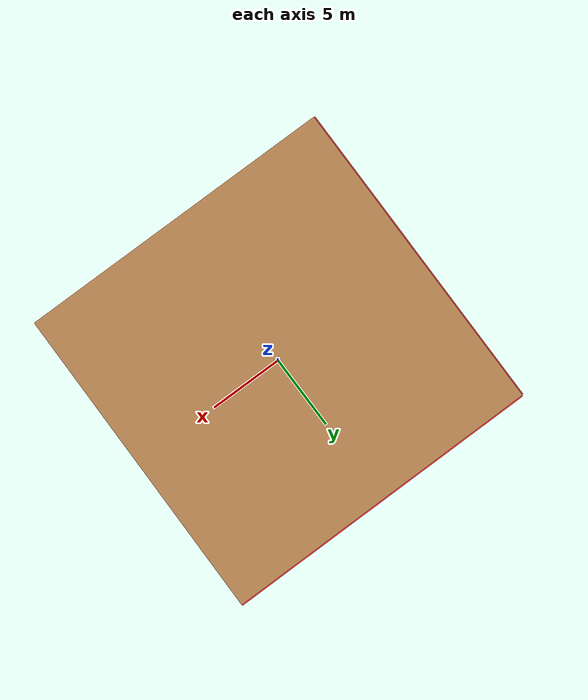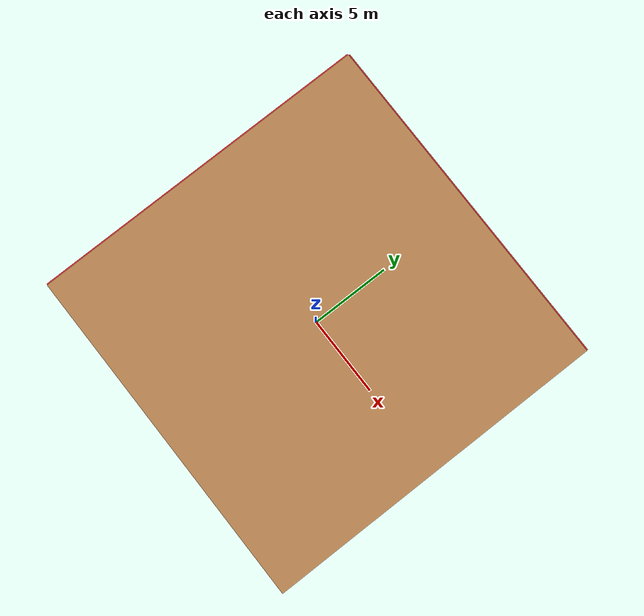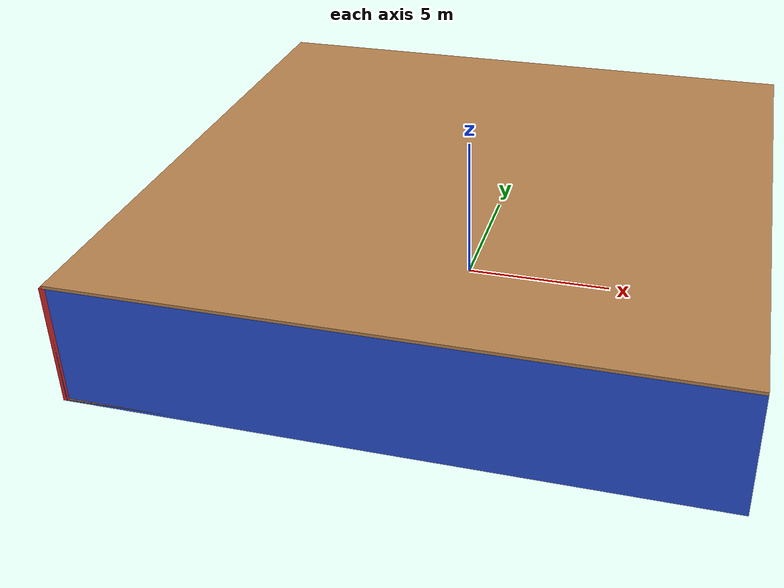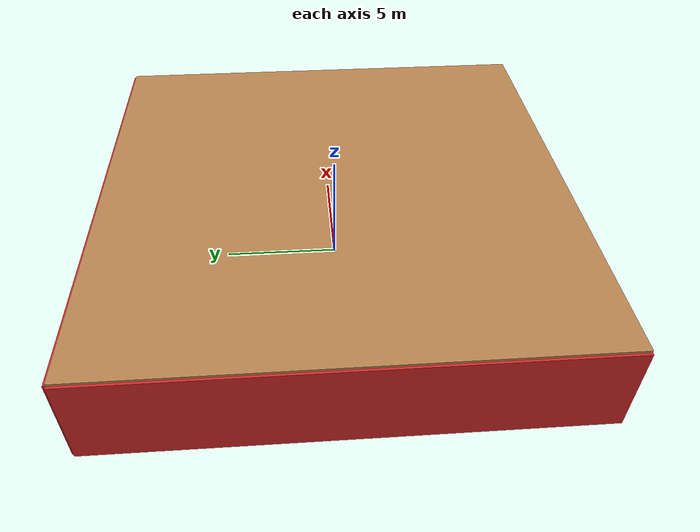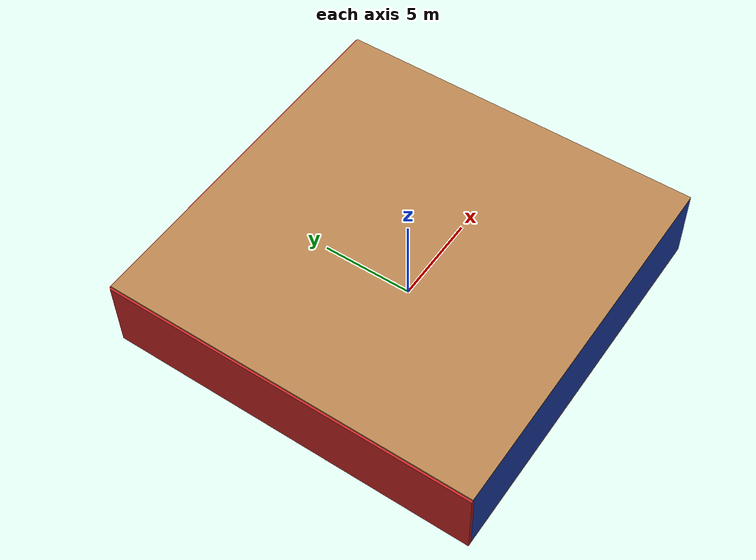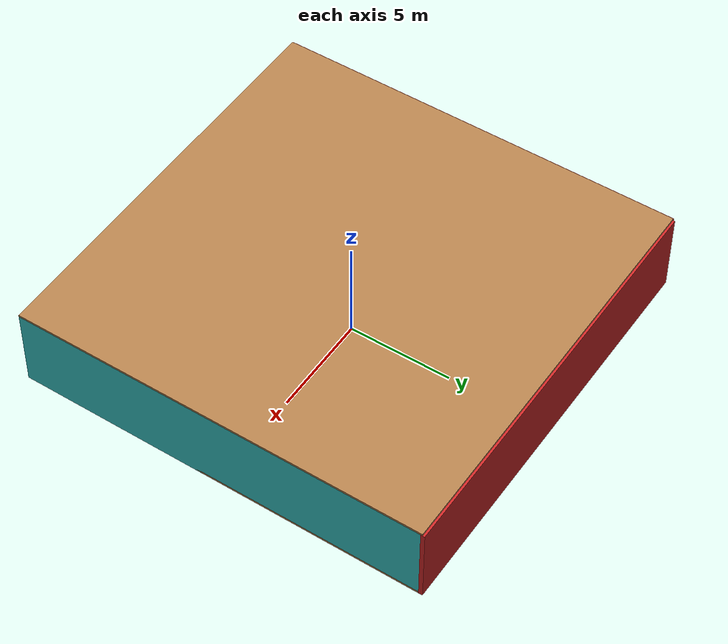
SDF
<sdf version="1.4">
 <world name="default">
  <physics type="ode">
   <max_step_size>0.001</max_step_size>
   <real_time_factor>1</real_time_factor>
   <real_time_update_rate>1000</real_time_update_rate>
   <gravity>0 0 -9.8</gravity>
  </physics>
  <scene><ambient>0.4 0.4 0.4 1</ambient><background>0.7 0.7 0.7 1</background><shadows>1</shadows></scene>
  <model name="Surrounding">
   <static>1</static>
   <link name="Ceiling">
    <collision name="Ceiling_Collision"><geometry><box><size>20 20 0.1</size></box></geometry></collision>
    <visual name="Ceiling_Visual">
     <geometry><box><size>20 20 0.1</size></box></geometry>
     <material>
      <script><uri>file://media/materials/scripts/gazebo.material</uri><name>Gazebo/WoodFloor</name></script>
     </material>
    </visual>
    <pose>0 0 4.05 0 0 0</pose>
   </link>
   <link name="Wall_South">
    <collision name="Wall_South_Collision">
     <geometry><box><size>20 0 4</size></box></geometry>
     <pose>0 0 2 0 -0 0</pose>
    </collision>
    <visual name="Wall_South_Visual">
     <pose>0 0 2 0 -0 0</pose>
     <geometry><box><size>20 0 4</size></box></geometry>
     <material>
      <script><uri>file://media/materials/scripts/gazebo.material</uri><name>Gazebo/Blue</name></script>
     </material>
    </visual>
    <velocity_decay><linear>0</linear><angular>0</angular></velocity_decay>
    <pose>0 -10 0 0 -0 0</pose>
   </link>
   <link name="Wall_East">
    <collision name="Wall_21_Collision">
     <geometry><box><size>20 0 4</size></box></geometry>
     <pose>0 0 2 0 -0 0</pose>
    </collision>
    <visual name="Wall_21_Visual">
     <pose>0 0 2 0 -0 0</pose>
     <geometry><box><size>20 0 4</size></box></geometry>
     <material>
      <script>
       <uri>file://media/materials/scripts/gazebo.material</uri>
       <name>Gazebo/TurquoiseGlowOutline</name>
      </script>
     </material>
    </visual>
    <velocity_decay><linear>0</linear><angular>0</angular></velocity_decay>
    <pose>10 0 0 0 -0 1.5708</pose>
   </link>
   <link name="Wall_North">
    <collision name="Wall_22_Collision">
     <geometry><box><size>20 0.2 4</size></box></geometry>
     <pose>0 0 2 0 -0 0</pose>
    </collision>
    <visual name="Wall_22_Visual">
     <pose>0 0 2 0 -0 0</pose>
     <geometry><box><size>20 0.2 4</size></box></geometry>
     <material>
      <script><uri>file://media/materials/scripts/gazebo.material</uri><name>Gazebo/Red</name></script>
     </material>
    </visual>
    <velocity_decay><linear>0</linear><angular>0</angular></velocity_decay>
    <pose>0 10 0 0 -0 0</pose>
   </link>
   <link name="Wall_West">
    <collision name="Wall_23_Collision">
     <geometry><box><size>20 0.2 4</size></box></geometry>
     <pose>0 0 2 0 -0 0</pose>
    </collision>
    <visual name="Wall_23_Visual">
     <pose>0 0 2 0 -0 0</pose>
     <geometry><box><size>20 0.2 4</size></box></geometry>
     <material>
      <script><uri>file://media/materials/scripts/gazebo.material</uri><name>Gazebo/RedGlow</name></script>
     </material>
    </visual>
    <velocity_decay><linear>0</linear><angular>0</angular></velocity_decay>
    <pose>-10 0 0 0 0 -1.5708</pose>
   </link>
   <link name="Ground_link">
    <collision name="collision">
     <pose>0 0 .05 0 -0 0</pose>
     <geometry><box><size>20 20 0.1</size></box></geometry>
    </collision>
    <visual name="visual">
     <pose>0 0 .05 0 -0 0</pose>
     <geometry><box><size>20 20 0.1</size></box></geometry>
     <material>
      <script><uri>file://media/materials/scripts/gazebo.material</uri><name>Gazebo/WoodFloor</name></script>
     </material>
    </visual>
   </link>
   <static>1</static>
  </model>
  <spherical_coordinates>
   <surface_model>EARTH_WGS84</surface_model>
   <latitude_deg>0</latitude_deg>
   <longitude_deg>0</longitude_deg>
   <elevation>0</elevation>
   <heading_deg>0</heading_deg>
  </spherical_coordinates>
  <light name="lightball_0" type="diffuse">
   <diffuse>0.8 0.8 0.8 1</diffuse>
   <specular>0.2 0.2 0.2 1</specular>
   <attenuation>
    <range>100</range>
    <constant>0.7</constant>
    <linear>0.01</linear>
    <quadratic>0.001</quadratic>
   </attenuation>
   <direction>-0.5 0.1 -0.9</direction>
   <pose>2.75522013044 -2.26425821321 3.70987621481 0 0 0</pose>
  </light>
  <light name="lightball_1" type="diffuse">
   <diffuse>0.8 0.8 0.8 1</diffuse>
   <specular>0.2 0.2 0.2 1</specular>
   <attenuation>
    <range>100</range>
    <constant>0.7</constant>
    <linear>0.01</linear>
    <quadratic>0.001</quadratic>
   </attenuation>
   <direction>-0.5 0.1 -0.9</direction>
   <pose>5.5257435951 3.94571366366 0.73870467704 0 0 0</pose>
  </light>
  <light name="lightball_2" type="diffuse">
   <diffuse>0.8 0.8 0.8 1</diffuse>
   <specular>0.2 0.2 0.2 1</specular>
   <attenuation>
    <range>100</range>
    <constant>0.7</constant>
    <linear>0.01</linear>
    <quadratic>0.001</quadratic>
   </attenuation>
   <direction>-0.5 0.1 -0.9</direction>
   <pose>-0.967852246981 4.1736603791 0.744664332885 0 0 0</pose>
  </light>
  <light name="lightball_3" type="diffuse">
   <diffuse>0.8 0.8 0.8 1</diffuse>
   <specular>0.2 0.2 0.2 1</specular>
   <attenuation>
    <range>100</range>
    <constant>0.7</constant>
    <linear>0.01</linear>
    <quadratic>0.001</quadratic>
   </attenuation>
   <direction>-0.5 0.1 -0.9</direction>
   <pose>6.95364878996 8.68134478798 1.87126532767 0 0 0</pose>
  </light>
  <light name="lightball_4" type="diffuse">
   <diffuse>0.8 0.8 0.8 1</diffuse>
   <specular>0.2 0.2 0.2 1</specular>
   <attenuation>
    <range>100</range>
    <constant>0.7</constant>
    <linear>0.01</linear>
    <quadratic>0.001</quadratic>
   </attenuation>
   <direction>-0.5 0.1 -0.9</direction>
   <pose>-0.399514441018 -6.85868927054 3.72995669804 0 0 0</pose>
  </light>
  <include><uri>model://table</uri><pose>-4.9158665048 1.2433026019 0 0 0 0.603539720884</pose></include>
  <include>
   <uri>model://construction_cone</uri>
   <pose>-1.34684905026 -4.08727098834 0 0 0 1.28114170326</pose>
  </include>
  <include><uri>model://cabinet</uri><pose>6.96348885515 -1.59488429833 0 0 0 0.807825895478</pose></include>
 </world>
</sdf>

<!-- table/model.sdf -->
<sdf version="1.5">
  <model name="table">
    <static>true</static>
    <link name="link">
      <collision name="surface">
        <pose>0 0 1.0 0 0 0</pose>
        <geometry>
          <box>
            <size>1.5 0.8 0.03</size>
          </box>
        </geometry>
        <surface>
          <friction>
            <ode>
              <mu>0.6</mu>
              <mu2>0.6</mu2>
            </ode>
          </friction>
        </surface>
      </collision>
      <visual name="visual1">
        <pose>0 0 1.0 0 0 0</pose>
        <geometry>
          <box>
            <size>1.5 0.8 0.03</size>
          </box>
        </geometry>
        <material>
          <script>
            <uri>model://media/materials/scripts/gazebo.material</uri>
            <name>Gazebo/Wood</name>
          </script>
        </material>
      </visual>
      <collision name="front_left_leg">
        <pose>0.68 0.38 0.5 0 0 0</pose>
        <geometry>
          <cylinder>
            <radius>0.02</radius>
            <length>1.0</length>
          </cylinder>
        </geometry>
      </collision>
      <visual name="front_left_leg">
        <pose>0.68 0.38 0.5 0 0 0</pose>
        <geometry>
          <cylinder>
            <radius>0.02</radius>
            <length>1.0</length>
          </cylinder>
        </geometry>
        <material>
          <script>
            <uri>model://media/materials/scripts/gazebo.material</uri>
            <name>Gazebo/Grey</name>
          </script>
        </material>
      </visual>
      <collision name="front_right_leg">
        <pose>0.68 -0.38 0.5 0 0 0</pose>
        <geometry>
          <cylinder>
            <radius>0.02</radius>
            <length>1.0</length>
          </cylinder>
        </geometry>
      </collision>
      <visual name="front_right_leg">
        <pose>0.68 -0.38 0.5 0 0 0</pose>
        <geometry>
          <cylinder>
            <radius>0.02</radius>
            <length>1.0</length>
          </cylinder>
        </geometry>
        <material>
          <script>
            <uri>model://media/materials/scripts/gazebo.material</uri>
            <name>Gazebo/Grey</name>
          </script>
        </material>
      </visual>
      <collision name="back_right_leg">
        <pose>-0.68 -0.38 0.5 0 0 0</pose>
        <geometry>
          <cylinder>
            <radius>0.02</radius>
            <length>1.0</length>
          </cylinder>
        </geometry>
      </collision>
      <visual name="back_right_leg">
        <pose>-0.68 -0.38 0.5 0 0 0</pose>
        <geometry>
          <cylinder>
            <radius>0.02</radius>
            <length>1.0</length>
          </cylinder>
        </geometry>
        <material>
          <script>
            <uri>model://media/materials/scripts/gazebo.material</uri>
            <name>Gazebo/Grey</name>
          </script>
        </material>
      </visual>
      <collision name="back_left_leg">
        <pose>-0.68 0.38 0.5 0 0 0</pose>
        <geometry>
          <cylinder>
            <radius>0.02</radius>
            <length>1.0</length>
          </cylinder>
        </geometry>
      </collision>
      <visual name="back_left_leg">
        <pose>-0.68 0.38 0.5 0 0 0</pose>
        <geometry>
          <cylinder>
            <radius>0.02</radius>
            <length>1.0</length>
          </cylinder>
        </geometry>
        <material>
          <script>
            <uri>model://media/materials/scripts/gazebo.material</uri>
            <name>Gazebo/Grey</name>
          </script>
        </material>
      </visual>
    </link>
  </model>
</sdf>

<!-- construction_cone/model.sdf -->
<sdf version="1.5">
  <model name="Construction Cone">
    <link name="link">
      <collision name="collision">
        <geometry>
          <mesh>
            <scale>10 10 10</scale>
            <uri>file://isr-testbed/construction_cone/meshes/construction_cone.dae</uri>
          </mesh>
        </geometry>
      </collision>
      <visual name="visual">
        <geometry>
          <mesh>
            <scale>10 10 10</scale>
            <uri>file://isr-testbed/construction_cone/meshes/construction_cone.dae</uri>
          </mesh>
        </geometry>
      </visual>
    </link>
  </model>
</sdf>

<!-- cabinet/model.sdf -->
<sdf version="1.5">
  <model name="cabinet">
    <static>true</static>
    <link name="cabinet_bottom_plate">
      <inertial>
        <pose>0 0 -1 0 0 0</pose>
        <inertia>
          <ixx>2.050000</ixx>
          <ixy>0</ixy>
          <ixz>0</ixz>
          <iyy>2.050000</iyy>
          <iyz>0</iyz>
          <izz>2.050000</izz>
        </inertia>
        <mass>25.000000</mass>
      </inertial>
      <collision name="cabinet_bottom_plate_geom">
        <pose>0 0 0.010000 0 0 0</pose>
        <geometry>
          <box>
            <size>0.450000 0.450000 0.020000</size>
          </box>
        </geometry>
      </collision>
      <visual name="cabinet_bottom_plate_geom_visual">
        <pose>0 0 0.010000 0 0 0</pose>
        <geometry>
          <box>
            <size>0.450000 0.450000 0.020000</size>
          </box>
        </geometry>
        <material>
          <script>
            <uri>model://media/materials/scripts/gazebo.material</uri>
            <name>Gazebo/Wood</name>
          </script>
        </material>
      </visual>
      <collision name="cabinet_bottom_plate_geom_cabinet_back_plate">
        <pose>0.235000 0 0.510000 0 0 0</pose>
        <geometry>
          <box>
            <size>0.020000 0.450000 1.020000</size>
          </box>
        </geometry>
      </collision>
      <visual name="cabinet_bottom_plate_geom_cabinet_back_plate_visual">
        <pose>0.235000 0 0.510000 0 0 0</pose>
        <geometry>
          <box>
            <size>0.020000 0.450000 1.020000</size>
          </box>
        </geometry>
        <material>
          <script>
            <uri>model://media/materials/scripts/gazebo.material</uri>
            <name>Gazebo/Wood</name>
          </script>
        </material>
      </visual>
      <collision name="cabinet_bottom_plate_geom_cabinet_left_plate">
        <pose>0 0.235000 0.510000 0 0 0</pose>
        <geometry>
          <box>
            <size>0.450000 0.020000 1.020000</size>
          </box>
        </geometry>
      </collision>
      <visual name="cabinet_bottom_plate_geom_cabinet_left_plate_visual">
        <pose>0 0.235000 0.510000 0 0 0</pose>
        <geometry>
          <box>
            <size>0.450000 0.020000 1.020000</size>
          </box>
        </geometry>
        <material>
          <script>
            <uri>model://media/materials/scripts/gazebo.material</uri>
            <name>Gazebo/Wood</name>
          </script>
        </material>
      </visual>
      <collision name="cabinet_bottom_plate_geom_cabinet_middle_plate">
        <pose>0 0 0.510000 0 0 0</pose>
        <geometry>
          <box>
            <size>0.450000 0.450000 0.020000</size>
          </box>
        </geometry>
      </collision>
      <visual name="cabinet_bottom_plate_geom_cabinet_middle_plate_visual">
        <pose>0 0 0.510000 0 0 0</pose>
        <geometry>
          <box>
            <size>0.450000 0.450000 0.020000</size>
          </box>
        </geometry>
        <material>
          <script>
            <uri>model://media/materials/scripts/gazebo.material</uri>
            <name>Gazebo/Wood</name>
          </script>
        </material>
      </visual>
      <collision name="cabinet_bottom_plate_geom_cabinet_right_plate">
        <pose>0 -0.235000 0.510000 0 0 0</pose>
        <geometry>
          <box>
            <size>0.450000 0.020000 1.020000</size>
          </box>
        </geometry>
      </collision>
      <visual name="cabinet_bottom_plate_geom_cabinet_right_plate_visual">
        <pose>0 -0.235000 0.510000 0 0 0</pose>
        <geometry>
          <box>
            <size>0.450000 0.020000 1.020000</size>
          </box>
        </geometry>
        <material>
          <script>
            <uri>model://media/materials/scripts/gazebo.material</uri>
            <name>Gazebo/Wood</name>
          </script>
        </material>
      </visual>
      <collision name="cabinet_bottom_plate_geom_cabinet_top_plate">
        <pose>0 0 1.010000 0 0 0</pose>
        <geometry>
          <box>
            <size>0.450000 0.450000 0.020000</size>
          </box>
        </geometry>
      </collision>
      <visual name="cabinet_bottom_plate_geom_cabinet_top_plate_visual">
        <pose>0 0 1.010000 0 0 0</pose>
        <geometry>
          <box>
            <size>0.450000 0.450000 0.020000</size>
          </box>
        </geometry>
        <material>
          <script>
            <uri>model://media/materials/scripts/gazebo.material</uri>
            <name>Gazebo/Wood</name>
          </script>
        </material>
      </visual>
    </link>
  </model>
</sdf>
